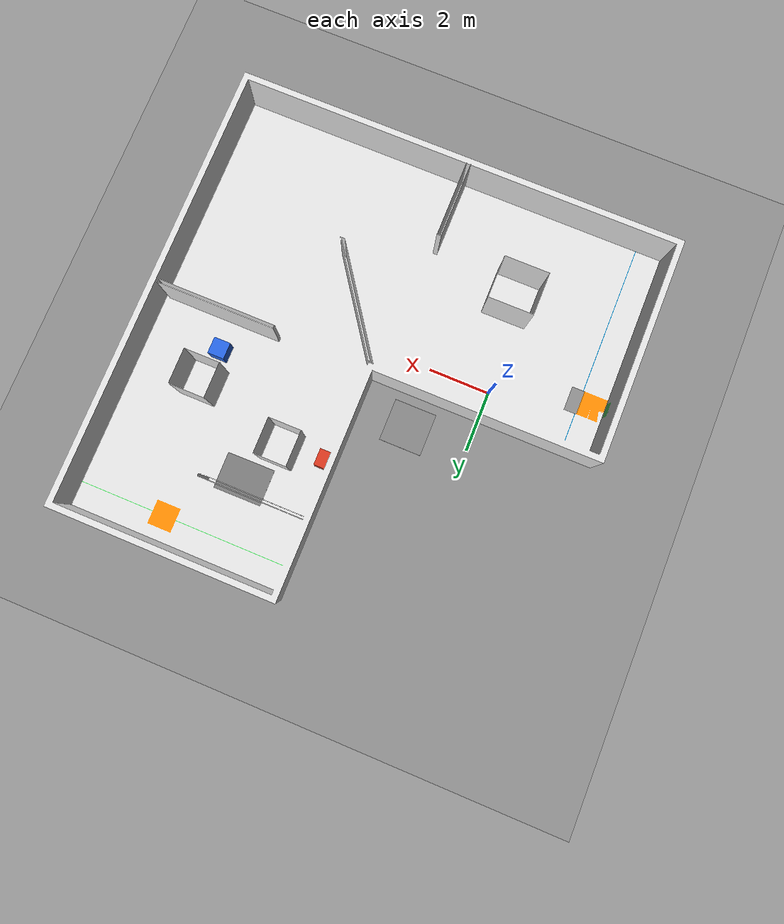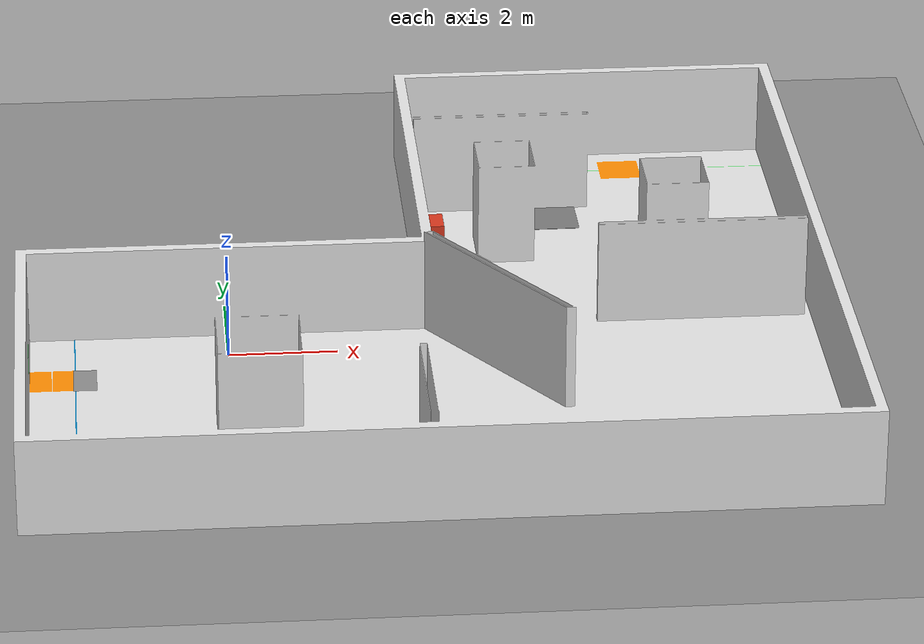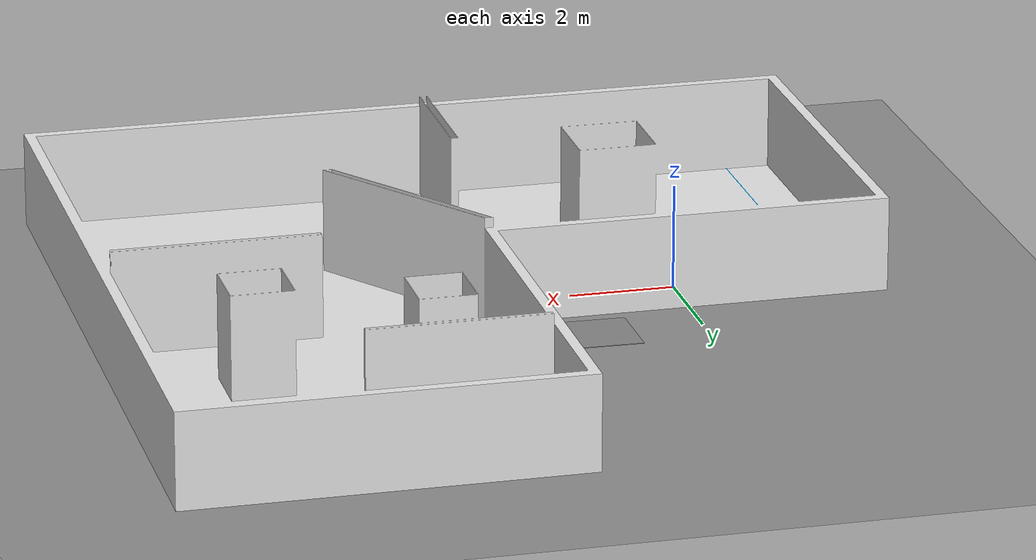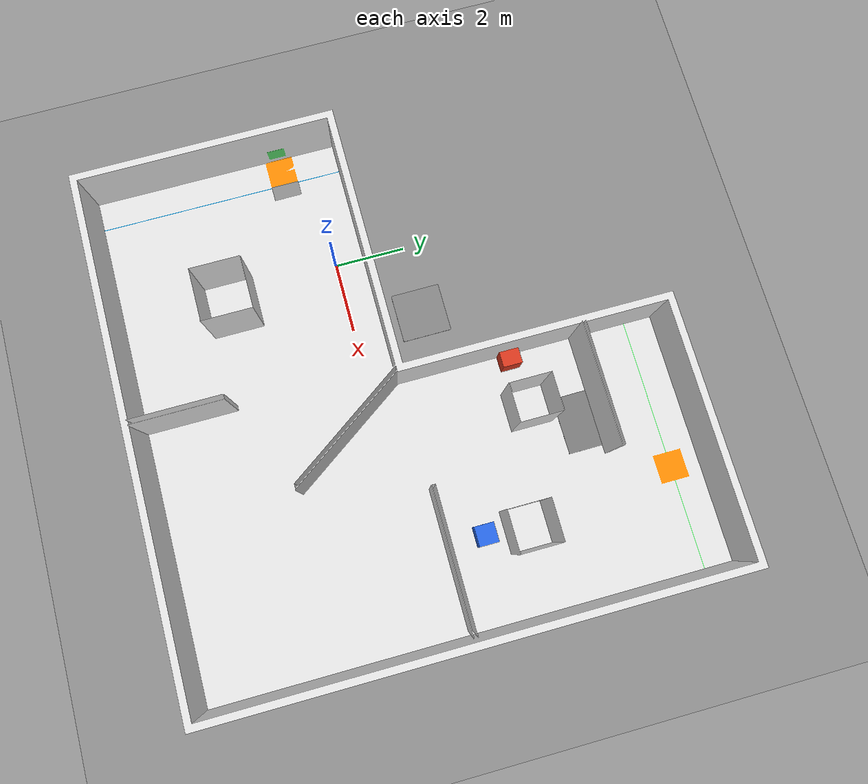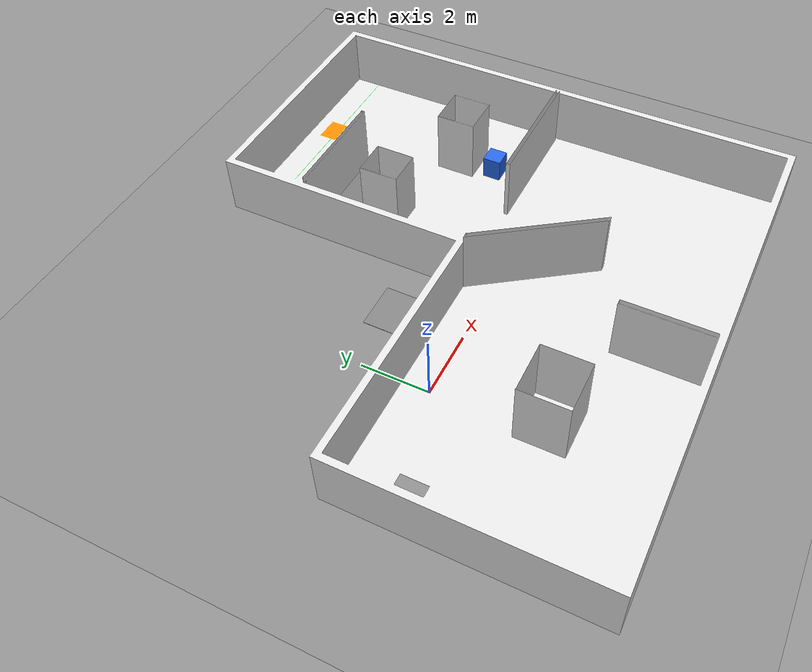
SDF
<?xml version="1.0" ?>
<sdf version="1.9">
  <world name="competition_world">
    <gravity>0 0 -9.8</gravity>
    <plugin filename="gz-sim-physics-system" name="gz::sim::systems::Physics" />
    <plugin filename="gz-sim-user-commands-system" name="gz::sim::systems::UserCommands" />
    <plugin filename="gz-sim-scene-broadcaster-system" name="gz::sim::systems::SceneBroadcaster" />
    <plugin filename="gz-sim-sensors-system" name="gz::sim::systems::Sensors"><render_engine>ogre</render_engine></plugin>
    <plugin filename="gz-sim-contact-system" name="gz::sim::systems::Contact" />

    <light name="dim_sun" type="directional">
      <cast_shadows>true</cast_shadows><pose>0 0 10 0 0 0</pose>
      <diffuse>0.35 0.32 0.28 1</diffuse><specular>0.08 0.08 0.08 1</specular>
      <direction>-0.7 0.2 -0.65</direction>
    </light>
    <light name="warm_local_light" type="point">
      <cast_shadows>true</cast_shadows><pose>5 3 3 0 0 0</pose>
      <diffuse>0.85 0.58 0.35 1</diffuse><specular>0.15 0.10 0.08 1</specular>
      <attenuation><range>10</range><constant>0.6</constant><linear>0.08</linear><quadratic>0.02</quadratic></attenuation>
    </light>
    <light name="cool_local_light" type="point">
      <cast_shadows>true</cast_shadows><pose>-2 -2 2.5 0 0 0</pose>
      <diffuse>0.30 0.45 0.75 1</diffuse><specular>0.08 0.10 0.15 1</specular>
      <attenuation><range>8</range><constant>0.7</constant><linear>0.10</linear><quadratic>0.02</quadratic></attenuation>
    </light>

    <model name="ground_plane">
      <static>true</static><link name="link">
        <collision name="collision">
          <geometry><plane><normal>0 0 1</normal><size>30 30</size></plane></geometry>
          <surface><friction><ode><mu>0.85</mu><mu2>0.85</mu2></ode></friction></surface>
        </collision>
        <visual name="visual">
          <geometry><plane><normal>0 0 1</normal><size>30 30</size></plane></geometry>
          <material><ambient>0.45 0.45 0.45 1</ambient><diffuse>0.55 0.55 0.55 1</diffuse></material>
        </visual>
      </link>
    </model>

    <include><uri>model://competition_map_dae</uri><pose>0 0 0 0 0 0</pose></include>

    <model name="low_grip_patch">
      <static>true</static><pose>6.2 5.5 0.004 0 0 0.008</pose><link name="link">
        <collision name="collision"><geometry><box><size>1.6 1.2 0.008</size></box></geometry><surface><friction><ode><mu>0.50</mu><mu2>0.50</mu2></ode></friction></surface></collision>
        <visual name="visual"><geometry><box><size>1.6 1.2 0.008</size></box></geometry><material><ambient>0.48 0.48 0.48 1</ambient><diffuse>0.48 0.48 0.48 1</diffuse></material></visual>
      </link>
    </model>
    <model name="rough_patch">
      <static>true</static><pose>2.0 2.0 0.006 0.010 -0.008 0</pose><link name="link">
        <collision name="collision"><geometry><box><size>1.4 1.4 0.012</size></box></geometry><surface><friction><ode><mu>1.45</mu><mu2>1.25</mu2></ode></friction></surface></collision>
        <visual name="visual"><geometry><box><size>1.4 1.4 0.012</size></box></geometry><material><ambient>0.52 0.52 0.52 1</ambient><diffuse>0.52 0.52 0.52 1</diffuse></material></visual>
      </link>
    </model>

    <model name="dynamic_obstacle">
      <static>false</static><pose>4 4 0.35 0 0 0</pose><link name="body">
        <inertial><mass>20</mass><inertia><ixx>0.82</ixx><iyy>0.82</iyy><izz>0.42</izz></inertia></inertial>
        <collision name="collision"><geometry><box><size>0.55 0.55 0.70</size></box></geometry></collision>
        <visual name="visual"><geometry><box><size>0.55 0.55 0.70</size></box></geometry><material><ambient>0.75 0.18 0.10 1</ambient><diffuse>0.85 0.22 0.12 1</diffuse></material></visual>
      </link>
      <joint name="slider" type="prismatic">
        <parent>world</parent><child>body</child>
        <axis><xyz>0 1 0</xyz><limit><lower>-1.6</lower><upper>1.6</upper><effort>60</effort><velocity>1.4</velocity></limit></axis>
      </joint>
      <plugin filename="gz-sim-joint-position-controller-system" name="gz::sim::systems::JointPositionController">
        <joint_name>slider</joint_name><topic>/dynamic_obstacle/cmd_pos</topic>
        <p_gain>220</p_gain><i_gain>0</i_gain><d_gain>60</d_gain>
        <cmd_max>60</cmd_max><cmd_min>-60</cmd_min>
      </plugin>
    </model>

    <!-- Second moving obstacle in the upper-room inner corridor.  Its
         controller sweeps it along X from 7.1 m to 9.9 m at Y=2.0 m. -->
    <model name="dynamic_obstacle_2">
      <static>false</static><pose>8.5 2.0 0.35 0 0 0</pose><link name="body">
        <inertial><mass>20</mass><inertia><ixx>0.82</ixx><iyy>0.82</iyy><izz>0.42</izz></inertia></inertial>
        <collision name="collision"><geometry><box><size>0.55 0.55 0.70</size></box></geometry></collision>
        <visual name="visual"><geometry><box><size>0.55 0.55 0.70</size></box></geometry><material><ambient>0.12 0.32 0.78 1</ambient><diffuse>0.15 0.40 0.90 1</diffuse></material></visual>
      </link>
      <joint name="slider" type="prismatic">
        <parent>world</parent><child>body</child>
        <axis><xyz>1 0 0</xyz><limit><lower>-1.4</lower><upper>1.4</upper><effort>60</effort><velocity>1.4</velocity></limit></axis>
      </joint>
      <plugin filename="gz-sim-joint-position-controller-system" name="gz::sim::systems::JointPositionController">
        <joint_name>slider</joint_name><topic>/dynamic_obstacle_2/cmd_pos</topic>
        <p_gain>220</p_gain><i_gain>0</i_gain><d_gain>60</d_gain>
        <cmd_max>60</cmd_max><cmd_min>-60</cmd_min>
      </plugin>
    </model>
  </world>
</sdf>

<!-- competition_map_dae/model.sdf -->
<sdf version="1.6">
  <model name="competition_map_dae">
    <static>true</static>
    <link name="map_link">
      <!-- The SW model contains a 0.20 m floor slab. Sink it so the slab's
           top surface is z=0 and sensors are above, rather than inside, it. -->
      <pose>0 0 -0.2 0 0 0</pose>
      <visual name="map_visual">
        <geometry>
          <mesh>
            <!-- Rules-correct visual: the 0.8 m finish pad touches the marker wall. -->
            <uri>model://competition_map_dae/meshes/competition_map_color_rules.dae</uri>
            <scale>1 1 1</scale>
          </mesh>
        </geometry>
      </visual>
      <collision name="map_collision">
        <geometry>
          <mesh>
            <uri>model://competition_map_dae/meshes/competition_map_collision.obj</uri>
            <scale>1 1 1</scale>
          </mesh>
        </geometry>
      </collision>
    </link>
  </model>
</sdf>
